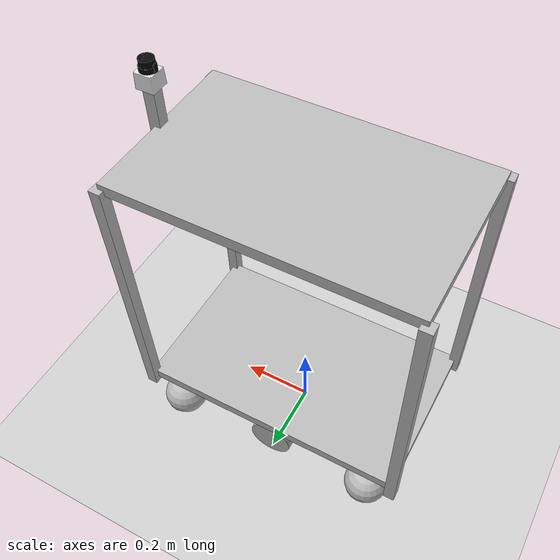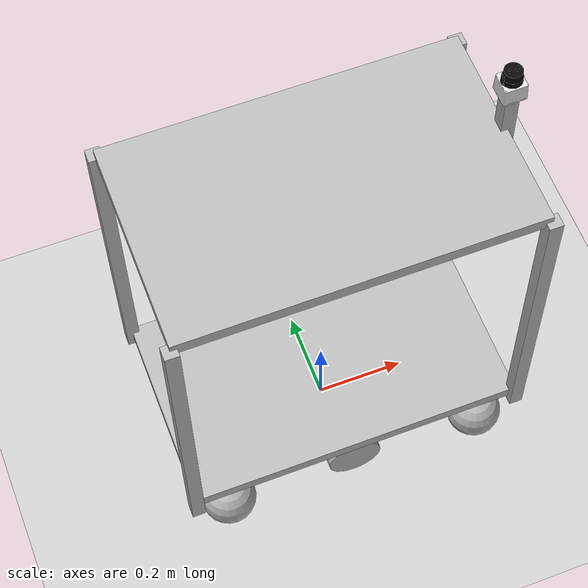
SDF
<?xml version="1.0" ?>
<sdf version="1.5">
  <world name="default">
    <!-- A global light source -->
    <include>
      <uri>model://sun</uri>
    </include>

    <!-- A ground plane -->
    <include>
      <uri>model://ground_plane</uri>
    </include>

	<include>
	  <uri>model://Astro</uri>
	  <name>Astro</name>
	</include>

 </world>
</sdf>

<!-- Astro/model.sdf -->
<sdf version='1.4'>

	<model name="Astro">

		<static>false</static>

		<link name="base_link">

		<!--Bottom bed of cart-->

			<pose> 0 0 .505 0 0 0 </pose>
			<inertial>
				<pose>0 0 -.3 0 0 0 </pose>
				<mass> 20 </mass>
			</inertial>

			<collision name="bottom_plate">
				<pose> 0 0 -.35 0 0 0 </pose>
				<geometry>
					<box>
          	<size>.762 .4572 .03</size>
					</box>
        </geometry>
			</collision>

			<visual name="bottom_plate">
				<pose> 0 0 -.35 0 0 0 </pose>
				<geometry>
					<box>
          	<size>.762 .4572 .03</size>
					</box>
        </geometry>
			</visual>

				<collision name="lidar_pole">
				<pose> .381 0 .381 0 0 0 </pose>
				<geometry>
					<box>
						<size>.03 .03 .3</size>
					</box>
				</geometry>
			</collision>

			<visual name="lidar_pole">
				<pose> .381 0 .381 0 0 0 </pose>
				<geometry>
					<box>
          	<size>.03 .03 .3</size>
					</box>
        </geometry>
			</visual>

			<collision name="top_plate">
				<pose> 0 0 .381 0 0 0 </pose>
				<geometry>
					<box>
						<size>.762 .4572 .03</size>
					</box>
				</geometry>
			</collision>

			<visual name="top_plate">
				<pose> 0 0 .381 0 0 0 </pose>
				<geometry>
					<box>
          	<size>.762 .4572 .03</size>
					</box>
        </geometry>
			</visual>

			<collision name="caster_collision_1">
				<pose> -.3 -.2-.442 0 0 0</pose>
				<geometry>
					<sphere>
						<radius>0.06191</radius>
					</sphere>
				</geometry>
				<surface>
              		<friction>
                		<ode>
                  			<mu>0</mu>
                  			<mu2>0</mu2>
                  			<slip1>1.0</slip1>
                  			<slip2>1.0</slip2>
                		</ode>
              		</friction>
            	</surface>
			</collision>

			<visual name="caster_visual_1">
				<pose>-.3 -.2 -.442 0 0 0</pose>
				<geometry>
                    <sphere>
                        <radius>0.06191</radius>
                	</sphere>
				</geometry>
			</visual>

			<collision name="caster_collision_2">
                <pose>.3 .2 -.442 0 0 0 </pose>
								<geometry>
                    <sphere>
                        <radius>0.06191</radius>
                		</sphere>
								</geometry>
								<surface>
                    <friction>
                        <ode>
                            <mu>0</mu>
                            <mu2>0</mu2>
                            <slip1>1.0</slip1>
                            <slip2>1.0</slip2>
                        </ode>
                    </friction>
                </surface>
            </collision>

			<visual name="caster_visual_2">
                <pose>.3 .2 -.442 0 0 0</pose>
				<geometry>
                    <sphere>
                        <radius>0.06191</radius>
                	</sphere>
				</geometry>
            </visual>

<collision name="caster_collision_3">
                <pose>.3 -.2 -.442 0 0 0</pose>
				<geometry>
                    <sphere>
                        <radius>0.06191</radius>
                	</sphere>
				</geometry>
				<surface>
                    <friction>
                        <ode>
                            <mu>0</mu>
                            <mu2>0</mu2>
                            <slip1>1.0</slip1>
                            <slip2>1.0</slip2>
                        </ode>
                    </friction>
                </surface>
            </collision>

			<visual name="caster_visual_3">
                <pose>.3 -.2 -.442 0 0 0</pose>
				<geometry>
                    <sphere>
                        <radius>0.06191</radius>
                	</sphere>
				</geometry>
            </visual>

			<collision name="caster_collision_4">
      	<pose>-.3 .2 -.442 0 0 0</pose>
					<geometry>
                    <sphere>
                        <radius>0.06191</radius>
                	</sphere>
					</geometry>
					<surface>
                <friction>
                        <ode>
                            <mu>0</mu>
                            <mu2>0</mu2>
                            <slip1>1.0</slip1>
                            <slip2>1.0</slip2>
                        </ode>
                    </friction>
                </surface>
      </collision>

			<visual name="caster_visual_4">
                <pose>-.3 .2 -.442 0 0 0</pose>
				<geometry>
                    <sphere>
                        <radius>0.06191</radius>
                	</sphere>
				</geometry>
       </visual>

		<collision name="pole1">
				<pose>0.381 -.2286 0 0 0 0</pose>
				<geometry>
					<box>
						<size>.03 .03 .762</size>
					</box>
				</geometry>
			</collision>

			<visual name="pole1">
				<pose>0.381 -.2286 0 0 0 0 </pose>
				<geometry>
					<box>
          	<size>.03 .03 .762</size>
					</box>
        </geometry>
			</visual>

<collision name="pole2">
				<pose> 0.381 .2286 0 0 0 0 </pose>
				<geometry>
					<box>
						<size>.03 .03 .762</size>
					</box>
				</geometry>
			</collision>

			<visual name="pole2">
				<pose>0.381 .2286  0 0 0 0</pose>
				<geometry>
					<box>
          	<size>.03 .03 .762</size>
					</box>
        </geometry>
			</visual>

<collision name="pole3">
				<pose>-0.381 .2286  0 0 0 0 </pose>
				<geometry>
					<box>
						<size>.03 .03 .762</size>
					</box>
				</geometry>
			</collision>

			<visual name="pole3">
				<pose>-0.381 .2286  0 0 0 0</pose>
				<geometry>
					<box>
          	<size>.03 .03 .762</size>
					</box>
        </geometry>
			</visual>

<collision name="pole4">
				<pose>-0.381 .2286  0 0 0 0 </pose>
				<geometry>
					<box>
						<size>.03 .03 .762</size>
					</box>
				</geometry>
			</collision>

			<visual name="pole4">
				<pose>-0.381 -.2286  0 0 0 0</pose>
				<geometry>
					<box>
          	<size>.03 .03 .762</size>
					</box>
        </geometry>
			</visual>

		</link>

		<link name="left_wheel">

			<pose>0 -.2  .061 0 1.57 1.57 </pose>
			<inertial>
				<mass>0.5</mass>
			</inertial>
			<collision name="collision">
                <geometry>
                    <cylinder>
                        <radius>0.06191</radius>
                        <length>0.03</length>
                    </cylinder>
                </geometry>
            </collision>

			<visual name="visual">
                <geometry>
                    <cylinder>
                        <radius>0.06191</radius>
                        <length>0.03</length>
                    </cylinder>
                </geometry>
            </visual>
		</link>

		<link name="right_wheel">

            <pose>0 .2 .061 0 1.57 1.57 </pose>
						<inertial>
							<mass>0.5</mass>
						</inertial>
            <collision name="collision">
                <geometry>
                    <cylinder>
                        <radius>0.06191</radius>
                        <length>0.03</length>
                    </cylinder>
                </geometry>
            </collision>

            <visual name="visual">
                <geometry>
                    <cylinder>
                        <radius>0.06191</radius>
                        <length>0.03</length>
                    </cylinder>
                </geometry>
            </visual>
    </link>

		<joint type="revolute" name="left_wheel_hinge">
			<pose>0 0 0 0 0 0 </pose>
			<child>left_wheel</child>
			<parent>base_link</parent>
			<axis>
				<xyz> 0 1 0 </xyz>
			</axis>
		</joint>

		<joint type="revolute" name="right_wheel_hinge">
            <pose>0 0 0 0 0 0 </pose>
            <child>right_wheel</child>
            <parent>base_link</parent>
            <axis>
                <xyz> 0 1 0 </xyz>
            </axis>
        </joint>

    <joint name="hokuyo_joint" type="fixed">
      <child>hokuyo_link</child>
      <parent>base_link</parent>
    </joint>

	<link name="hokuyo_link">
		<pose>.381 0 1.036 0 0 0</pose>
		<inertial>
			<mass>0.1</mass>
		</inertial>

		<visual name="visual">
		<geometry>
        	  <mesh>
            	<uri>model://hokuyo/meshes/hokuyo.dae</uri>
          	</mesh>
        	</geometry>
     	 </visual>

		<sensor name="head_hokuyo_sensor" type="ray">
        <pose>0 0 0 0 0 0</pose>
        <ray>
          <scan>
            <horizontal>
              <samples>200</samples>
              <resolution>1</resolution>
              <min_angle>-3.1</min_angle>
              <max_angle>3.1</max_angle>
            </horizontal>
          </scan>
          <range>
            <min>0.08</min>
            <max>6</max>
            <resolution>0.01</resolution>
          </range>
        </ray>

        <plugin name="laser" filename="libRayPlugin.so" />
    		<always_on>1</always_on>
        	<update_rate>30</update_rate>
				<visualize>true</visualize>

				<plugin name="gazebo_ros_head_hokuyo_controller" filename="libgazebo_ros_laser.so">
					<topicName>scan</topicName>
					<frameName>Astro/hokuyo_link</frameName>
				</plugin>
		</sensor>

	 </link>

	<plugin name="differential_drive_controller" filename="libgazebo_ros_diff_drive.so">

		<legacyMode>true</legacyMode>

		<alwaysOn>true</alwaysOn>

		<updateRate>30</updateRate>

		<leftJoint>left_wheel_hinge</leftJoint>

		<rightJoint>right_wheel_hinge</rightJoint>

		<wheelSeparation>.4</wheelSeparation>

		<wheelDiameter>.12382</wheelDiameter>

		<wheelTorque>15</wheelTorque>

		<commandTopic>/cmd_vel</commandTopic>

		<odometryTopic>odom</odometryTopic>

		<odometryFrame>odom</odometryFrame>

		<robotBaseFrame>base_link</robotBaseFrame>

	</plugin>

</model>
</sdf>
